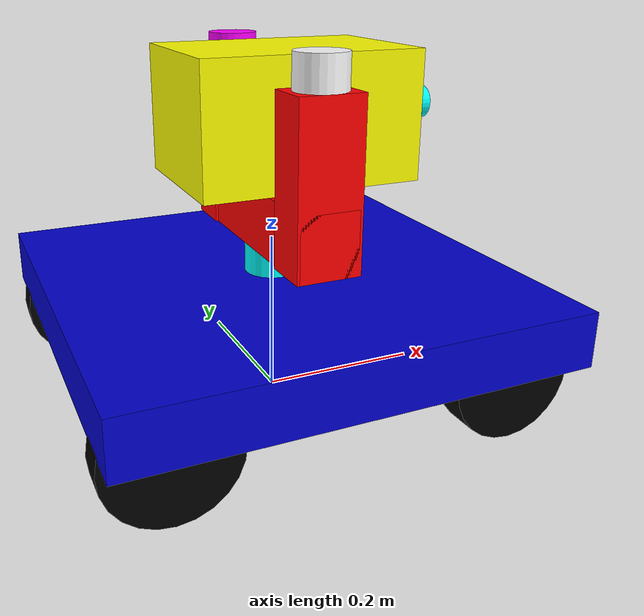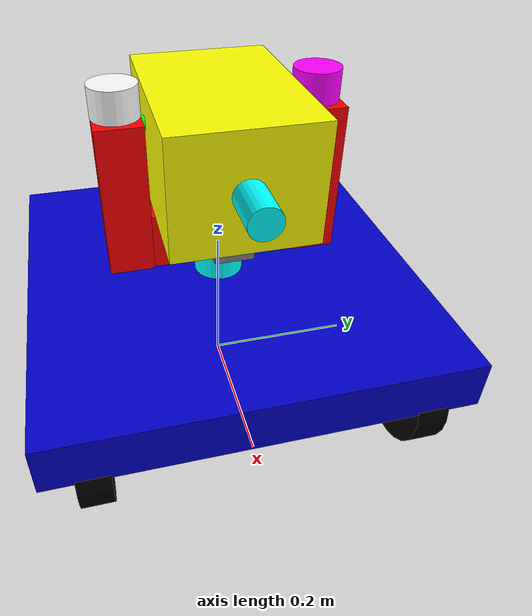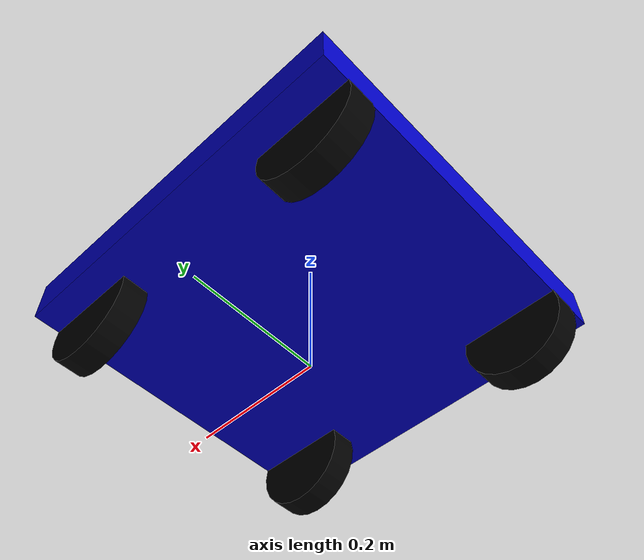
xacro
<?xml version="1.0"?>
<robot name="sentry_robot" xmlns:xacro="http://ros.org/wiki/xacro">

    <!-- Define robot constants (that we arent using)-->
  <xacro:property name="base_width" value="0.540"/>
  <xacro:property name="base_length" value="0.530"/> <!--in direction of turret-->
  <xacro:property name="base_height" value="0.066"/>
  <xacro:property name="ground_offset" value="0.093"/>

  <xacro:property name="wheel_radius" value="0.075"/>
  <xacro:property name="wheel_width" value="0.04"/>
  <xacro:property name="wheel_mass" value="0.5"/>

  <xacro:property name="wheel_turret_dir_offset" value="0.2048"/>
  <xacro:property name="wheel_anti_turret_dir_offset" value="0.1986"/>

  <xacro:property name="gimbal_radius" value="0.0335"/>
  <xacro:property name="gimbal_height" value="0.076"/>

  <xacro:property name="lidar_length" value="0.054"/>
  <xacro:property name="lidar_width" value="0.04629"/>
  <xacro:property name="lidar_height" value="0.0348"/>

  <xacro:property name="support_width" value="0.3048"/>
  <xacro:property name="support_length" value="0.0699"/>
  <xacro:property name="support_base_height" value="0.075"/>

  <xacro:property name="support_standoff_width" value="0.058"/>
  <xacro:property name="support_standoff_length" value="0.0762"/>
  <xacro:property name="support_standoff_height" value="0.197"/>

  <xacro:property name="turret_shaft_radius" value="0.01"/>

  <xacro:property name="turret_length" value="0.18"/>
  <xacro:property name="turret_width" value="0.262"/>
  <xacro:property name="turret_height" value="0.15"/>
  <xacro:property name="turret_height_offset" value="0.03"/>

  <xacro:property name="mass" value="20"/>

  <!-- Define inertial property macros  -->
  <xacro:macro name="box_inertia" params="m w h d">
  <inertial>
    <origin xyz="0 0 0" rpy="0 0 0"/>
    <mass value="${m}"/>
    <inertia
      ixx="${(m/12) * (h*h + d*d)}"
      ixy="0"
      ixz="0"
      iyy="${(m/12) * (w*w + d*d)}"
      iyz="0"
      izz="${(m/12) * (w*w + h*h)}"/>
  </inertial>
</xacro:macro>

  <xacro:macro name="cylinder_inertia" params="m rad h">
  <inertial>
    <origin xyz="0 0 0" rpy="0 0 0"/>
    <mass value="${m}"/>
    <inertia
      ixx="${(m/12) * (3*rad*rad + h*h)}"
      ixy="0"
      ixz="0"
      iyy="${(m/12) * (3*rad*rad + h*h)}"
      iyz="0"
      izz="${(m/2) * (rad*rad)}"/>
  </inertial>
</xacro:macro>

  <!-- Base Link = chassis. Footprint and odometry follow this frame. -->
  <link name="base_link">
    <visual>
      <origin xyz="0 0 ${base_height/2 + ground_offset}" rpy="0 0 0"/>
      <geometry>
        <box size="${base_width} ${base_length} ${base_height}"/>
      </geometry>
      <material name="blue">
        <color rgba="0 0 0.8 1"/>
      </material>
    </visual>
    <collision>
      <origin xyz="0 0 ${base_height/2 + ground_offset}" rpy="0 0 0"/>
      <geometry>
        <box size="${base_width} ${base_length} ${base_height}"/>
      </geometry>
    </collision>
    <xacro:box_inertia m="${mass}" w="${base_width}" d="${base_length}" h="${base_height}"/>
  </link>

  <!-- Front Left Wheel -->
  <link name="front_left_wheel">
    <visual>
      <geometry>
        <cylinder radius="${wheel_radius}" length="${wheel_width}"/>
      </geometry>
      <origin xyz="0 0 0" rpy="0 0 0"/>
      <material name="black">
        <color rgba="0 0 0 1"/>
      </material>
    </visual>
    <collision>
      <geometry>
        <cylinder radius="${wheel_radius}" length="${wheel_width}"/>
      </geometry>
      <origin xyz="0 0 0" rpy="0 0 0"/>
    </collision>
    <xacro:cylinder_inertia m="${wheel_mass}" rad="${wheel_radius}" h="${wheel_width}"/>
  </link>

  <joint name="front_left_wheel_joint" type="continuous">
    <parent link="base_link"/>
    <child link="front_left_wheel"/>
    <origin xyz="${wheel_anti_turret_dir_offset} ${wheel_turret_dir_offset} ${wheel_radius}" rpy="1.5708 0 0"/>
    <dynamics damping="0.1" friction="0.1"/>
    <axis xyz="0 0 1"/>
  </joint>

  <!-- Front Right Wheel -->
  <link name="front_right_wheel">
    <visual>
      <geometry>
        <cylinder radius="${wheel_radius}" length="${wheel_width}"/>
      </geometry>
      <origin xyz="0 0 0" rpy="0 0 0"/>
      <material name="black">
        <color rgba="0 0 0 1"/>
      </material>
    </visual>
    <collision>
      <geometry>
        <cylinder radius="${wheel_radius}" length="${wheel_width}"/>
      </geometry>
      <origin xyz="0 0 0" rpy="0 0 0"/>
    </collision>
    <xacro:cylinder_inertia m="${wheel_mass}" rad="${wheel_radius}" h="${wheel_width}"/>
  </link>

  <joint name="front_right_wheel_joint" type="continuous">
    <parent link="base_link"/>
    <child link="front_right_wheel"/>
    <origin xyz="${-wheel_anti_turret_dir_offset} ${wheel_turret_dir_offset} ${wheel_radius}" rpy="1.5708 0 0"/>
    <dynamics damping="0.1" friction="0.1"/>
    <axis xyz="0 0 1"/>
  </joint>

  <!-- Back Left Wheel -->
  <link name="back_left_wheel">
    <visual>
      <geometry>
        <cylinder radius="${wheel_radius}" length="${wheel_width}"/>
      </geometry>
      <origin xyz="0 0 0" rpy="0 0 0"/>
      <material name="black">
        <color rgba="0 0 0 1"/>
      </material>
    </visual>
    <collision>
      <geometry>
        <cylinder radius="${wheel_radius}" length="${wheel_width}"/>
      </geometry>
      <origin xyz="0 0 0" rpy="0 0 0"/>
    </collision>
    <xacro:cylinder_inertia m="${wheel_mass}" rad="${wheel_radius}" h="${wheel_width}"/>
  </link>

  <joint name="back_left_wheel_joint" type="continuous">
    <parent link="base_link"/>
    <child link="back_left_wheel"/>
    <origin xyz="${wheel_anti_turret_dir_offset} ${-wheel_turret_dir_offset} ${wheel_radius}" rpy="1.5708 0 0"/>
    <dynamics damping="0.1" friction="0.1"/>
    <axis xyz="0 0 1"/>
  </joint>

  <!-- Back Right Wheel -->
  <link name="back_right_wheel">
    <visual>
    <origin xyz="0 0 0" rpy="0 0 0"/>
      <geometry>
        <cylinder radius="${wheel_radius}" length="${wheel_width}"/>
      </geometry>
      <material name="black">
        <color rgba="0 0 0 1"/>
      </material>
    </visual>
    <collision>
    <origin xyz="0 0 0" rpy="0 0 0"/>
      <geometry>
        <cylinder radius="${wheel_radius}" length="${wheel_width}"/>
      </geometry>
    </collision>
    <xacro:cylinder_inertia m="${wheel_mass}" rad="${wheel_radius}" h="${wheel_width}"/>
  </link>

  <joint name="back_right_wheel_joint" type="continuous">
    <parent link="base_link"/>
    <child link="back_right_wheel"/>
    <origin xyz="${-wheel_anti_turret_dir_offset} ${-wheel_turret_dir_offset} ${wheel_radius}" rpy="1.5708 0 0"/>
    <dynamics damping="0.1" friction="0.1"/>
    <axis xyz="0 0 1"/>
  </joint>

   <link name="gimbal_link">
    <visual>
      <origin xyz="0 0 0" rpy="0 0 0"/>
      <geometry>
        <cylinder radius="${gimbal_radius}" length="${gimbal_height}"/>
      </geometry>
      <material name="Cyan">
        <color rgba="0 1.0 1.0 1.0"/>
      </material>
    </visual>
      <collision>
        <origin xyz="0 0 0" rpy="0 0 0"/>
        <geometry>
          <cylinder radius="${gimbal_radius}" length="${gimbal_height}"/>
        </geometry>
      </collision>
      <xacro:cylinder_inertia m="0.5" rad="${gimbal_radius}" h="${gimbal_height}"/>
  </link>
  <joint name="gimbal_joint" type="continuous">
      <parent link="base_link"/>
      <child link="gimbal_link"/>
      <origin xyz="0 0 ${base_height + ground_offset + gimbal_height/2}" rpy="0 0 ${1.5708}"/>
      <axis xyz="0 0 -1"/>
      <dynamics damping="0.1" friction="0.1"/>
  </joint>

   <!-- support_base -->
  <link name="bottom_support_link">
    <visual>
      <origin xyz="0 0 0" rpy="0 0 0"/>
      <geometry>
        <box size="${support_width} ${support_length} ${support_base_height}"/>
      </geometry>
      <material name="red">
        <color rgba="1 0 0 1"/>
      </material>
    </visual>
    <collision>
      <origin xyz="0 0 0" rpy="0 0 0"/>
      <geometry>
        <box size="${support_width} ${support_length} ${support_base_height}"/>
      </geometry>
    </collision>
    <xacro:box_inertia m="${0.5}" w="${support_width * 2 + 2 * gimbal_radius}" d="${support_length}" h="${support_base_height}"/>
  </link>

   <joint name="bottom_support_joint" type="fixed">
      <parent link="gimbal_link"/>
      <child link="bottom_support_link"/>
      <origin xyz="0 0 ${support_base_height / 2}" rpy="0 0 0"/>
  </joint>

  <!-- LSL -->
  <link name="right_support_link">
    <visual>
      <origin xyz="0 0 0" rpy="0 0 0"/>
      <geometry>
        <box size="${support_standoff_width} ${support_standoff_length} ${support_standoff_height}"/>
      </geometry>
      <material name="red">
        <color rgba="1 0 0 1"/>
      </material>
    </visual>
    <collision>
      <origin xyz="0 0 0" rpy="0 0 0"/>
      <geometry>
        <box size="${support_standoff_width} ${support_standoff_length} ${support_standoff_height}"/>
      </geometry>
    </collision>
    <xacro:box_inertia m="${0.5}" w="${support_standoff_width}" d="${support_standoff_length}" h="${support_standoff_height}"/>
  </link>

   <joint name="right_support_joint" type="fixed">
      <parent link="bottom_support_link"/>
      <child link="right_support_link"/>
      <origin xyz="${(support_width/2 - support_standoff_width/2)} 0 ${(support_standoff_height - support_base_height)/2}" rpy="0 0 0"/>
  </joint>

  <!-- RSL -->
  <link name="left_support_link">
    <visual>
      <origin xyz="0 0 0" rpy="0 0 0"/>
      <geometry>
        <box size="${support_standoff_width} ${support_standoff_length} ${support_standoff_height}"/>
      </geometry>
      <material name="red">
        <color rgba="1 0 0 1"/>
      </material>
    </visual>
    <collision>
      <origin xyz="0 0 0" rpy="0 0 0"/>
      <geometry>
        <box size="${support_standoff_width} ${support_standoff_length} ${support_standoff_height}"/>
      </geometry>
    </collision>
    <xacro:box_inertia m="${0.5}" w="${support_standoff_width}" d="${support_standoff_length}" h="${support_standoff_height}"/>
  </link>

   <joint name="left_support_joint" type="fixed">
      <parent link="bottom_support_link"/>
      <child link="left_support_link"/>
      <origin xyz="${-(support_width/2 - support_standoff_width/2)} 0 ${(support_standoff_height - support_base_height)/2}" rpy="0 0 0"/>
  </joint>

  <!-- Turret shaft -->
  <link name="turret_shaft_link">
    <visual>
    <origin xyz="0 0 0" rpy="0 0 0"/>
      <geometry>
        <cylinder radius="${turret_shaft_radius}" length="${2*(support_width/2 - support_standoff_width/2)}"/>
      </geometry>
      <material name="yellow">
        <color rgba="0 1 0 1"/>
      </material>
    </visual>
    <collision>
      <origin xyz="0 0 0" rpy="0 0 0"/>
      <geometry>
        <cylinder radius="${turret_shaft_radius}" length="${2*(support_width + gimbal_radius)}"/>
      </geometry>
    </collision>
    <xacro:cylinder_inertia m="${0.5}" rad="${turret_shaft_radius}" h="${2*(support_width + gimbal_radius)}"/>
  </link>

  <!-- Locked revolute for now: published in /joint_states, but held at 0 rad -->
  <joint name="turret_shaft_joint" type="revolute">
    <parent link="bottom_support_link"/>
    <child link="turret_shaft_link"/>
    <origin xyz="0 0 ${0.75 * support_standoff_height}" rpy="0 1.5708 0"/>
    <axis xyz="0 0 1"/>
    <limit lower="-0.0001" upper="0.0001" effort="100.0" velocity="0.01"/>
    <dynamics damping="500.0" friction="100.0"/>
  </joint>

  <!-- Turret box -->
  <link name="turret_link">
    <visual>
      <origin xyz="0 0 0" rpy="0 0 0"/>
      <geometry>
        <box size="${turret_width} ${turret_length} ${turret_height}"/>
      </geometry>
      <material name="green">
        <color rgba="1 1 0 1"/>
      </material>
    </visual>
    <collision>
      <origin xyz="0 0 0" rpy="0 0 0"/>
      <geometry>
        <box size="${turret_width} ${turret_length} ${turret_height}"/>
      </geometry>
    </collision>
    <xacro:box_inertia m="3" w="${turret_width}" d="${turret_length}" h="${turret_height}"/>
  </link>

   <joint name="turret_joint" type="fixed">
      <parent link="turret_shaft_link"/>
      <child link="turret_link"/>
      <origin xyz="${(turret_height_offset)} -0.014 0" rpy="1.5708 0 -1.5708"/>
  </joint>

  <!-- gun barrel shaft -->
  <link name="gun_shaft_link">
    <visual>
    <origin xyz="0 0 0" rpy="0 0 0"/>
      <geometry>
        <cylinder radius="0.02" length="0.15"/>
      </geometry>
      <material name="something">
        <color rgba="0 1 1 1"/>
      </material>
    </visual>
    <collision>
      <origin xyz="0 0 0" rpy="0 0 0"/>
      <geometry>
        <cylinder radius="0.02" length="0.15"/>
      </geometry>
    </collision>
    <xacro:cylinder_inertia m="0.2" rad="0.02" h="0.15"/>
  </link>

  <joint name="gun_shaft_joint" type="fixed">
    <parent link="turret_link"/>
    <child link="gun_shaft_link"/>
    <origin xyz="${turret_length/2 + 0.025} 0 0" rpy="0 1.5708 0"/>
    <axis xyz="0 0 1"/>
  </joint>

  <!-- LiDAR -->
  <link name="laser_frame_right">
    <visual>
      <geometry>
        <cylinder radius="0.03" length="0.04"/>
      </geometry>
      <material name="purple">
        <color rgba="1 0 1 1"/>
      </material>
    </visual>
    <collision>
      <geometry>
        <cylinder radius="0.03" length="0.04"/>
      </geometry>
    </collision>
    <inertial>
      <mass value="0.1"/>
      <origin xyz="0 0 0" rpy="0 0 0"/>
      <inertia ixx="0.0001" ixy="0.0" ixz="0.0"
               iyy="0.0001" iyz="0.0" izz="0.0001"/>
    </inertial>
  </link>

  <joint name="laser_joint_right" type="fixed">
    <parent link="right_support_link"/>
    <child link="laser_frame_right"/>
    <origin xyz="0 0 ${support_standoff_height / 2 + 0.02}" rpy="0 0 -1.5708"/>
  </joint>

  <link name="laser_frame_left">
    <visual>
      <geometry>
        <cylinder radius="0.03" length="0.04"/>
      </geometry>
      <material name="white">
        <color rgba="1 1 1 1"/>
      </material>
    </visual>
    <collision>
      <geometry>
        <cylinder radius="0.03" length="0.04"/>
      </geometry>
    </collision>
    <inertial>
      <mass value="0.1"/>
      <origin xyz="0 0 0" rpy="0 0 0"/>
      <inertia ixx="0.0001" ixy="0.0" ixz="0.0"
               iyy="0.0001" iyz="0.0" izz="0.0001"/>
    </inertial>
  </link>

  <joint name="laser_joint_left" type="fixed">
    <parent link="left_support_link"/>
    <child link="laser_frame_left"/>
    <origin xyz="0 0 ${support_standoff_height / 2 + 0.02}" rpy="0 0 1.5708"/>
  </joint>

  <!-- IMU -->
  <link name="imu_link">
    <visual>
      <geometry>
        <box size="0.02 0.02 0.01"/>
      </geometry>
      <material name="green">
        <color rgba="0 1 0 1"/>
      </material>
    </visual>
    <inertial>
      <mass value="0.01"/>
      <origin xyz="0 0 0" rpy="0 0 0"/>
      <inertia ixx="0.00001" ixy="0.0" ixz="0.0"
               iyy="0.00001" iyz="0.0" izz="0.00001"/>
    </inertial>
  </link>

  <joint name="imu_joint" type="fixed">
    <parent link="gimbal_link"/>
    <child link="imu_link"/>
    <origin xyz="0 0 0" rpy="0 0 0"/>
  </joint>

  <!-- depth camera-->
  <link name="depth_camera_link">
  <visual>
    <geometry>
      <box size="0.05 0.05 0.05"/>
    </geometry>
    <material name="camera_gray">
      <color rgba="0.5 0.5 0.5 1"/>
    </material>
  </visual>

  <collision>
    <geometry>
      <box size="0.05 0.05 0.05"/>
    </geometry>
  </collision>

  <inertial>
    <mass value="0.05"/>
    <inertia
      ixx="1e-5" ixy="0" ixz="0"
      iyy="1e-5" iyz="0"
      izz="1e-5"/>
  </inertial>
  </link>

  <joint name="depth_camera_joint" type="fixed">
  <parent link="turret_link"/>
  <child link="depth_camera_link"/>
  <origin xyz="0.05 0 ${-1 * (turret_height / 2  + 0.025)}" rpy="0 0 0"/>
  </joint>

    <!-- Gazebo-specific properties for base_link -->
    <gazebo reference="base_link">
    <mu1>0.2</mu1>
    <mu2>0.2</mu2>
    <kp>1000000.0</kp>
    <kd>100.0</kd>
    <minDepth>0.001</minDepth>
    <maxVel>1.0</maxVel>
    </gazebo>

    <!-- Gazebo-specific properties for wheels -->
    <gazebo reference="front_left_wheel">
        <mu1>1.0</mu1>
        <mu2>1.0</mu2>
        <kp>1000000.0</kp>
        <kd>1.0</kd>
        <minDepth>0.001</minDepth>
        <material>Gazebo/Black</material>
    </gazebo>

    <gazebo reference="front_right_wheel">
        <mu1>1.0</mu1>
        <mu2>1.0</mu2>
        <kp>1000000.0</kp>
        <kd>1.0</kd>
        <minDepth>0.001</minDepth>
        <material>Gazebo/Black</material>
    </gazebo>

    <gazebo reference="back_left_wheel">
        <mu1>1.0</mu1>
        <mu2>1.0</mu2>
        <kp>1000000.0</kp>
        <kd>1.0</kd>
        <minDepth>0.001</minDepth>
        <material>Gazebo/Black</material>
    </gazebo>

    <gazebo reference="back_right_wheel">
        <mu1>1.0</mu1>
        <mu2>1.0</mu2>
        <kp>1000000.0</kp>
        <kd>1.0</kd>
        <minDepth>0.001</minDepth>
        <material>Gazebo/Black</material>
    </gazebo>

<!-- Gazebo Planar Move Plugin (for omnidirectional motion) -->
  <gazebo>
    <plugin name="planar_move" filename="libgazebo_ros_planar_move.so">
      <ros>
        <remapping>cmd_vel:=cmd_vel</remapping>
        <remapping>odom:=odom</remapping>
      </ros>
      <update_rate>50</update_rate>
      <publish_rate>50</publish_rate>
      <publish_odom>true</publish_odom>
      <publish_odom_tf>true</publish_odom_tf>
      <odometry_frame>odom</odometry_frame>
      <robot_base_frame>base_link</robot_base_frame>
    </plugin>
  </gazebo>

  <!-- Joint State Publisher Plugin (publishes wheel joint states) -->
  <gazebo>
    <plugin name="gazebo_ros_joint_state_publisher" filename="libgazebo_ros_joint_state_publisher.so">
      <update_rate>50</update_rate>
      <joint_name>front_left_wheel_joint</joint_name>
      <joint_name>front_right_wheel_joint</joint_name>
      <joint_name>back_left_wheel_joint</joint_name>
      <joint_name>back_right_wheel_joint</joint_name>
      <joint_name>gimbal_joint</joint_name>
      <joint_name>turret_shaft_joint</joint_name>
    </plugin>
  </gazebo>

  <!-- LiDAR Plugin -->
  <gazebo reference="laser_frame_left">
    <sensor name="laser_left" type="ray">
      <pose>0 0 0 0 0 0</pose>
      <visualize>true</visualize>
      <update_rate>10</update_rate>
      <ray>
        <scan>
          <horizontal>
            <samples>241</samples>
            <resolution>1</resolution>
            <min_angle>1.5</min_angle>
            <max_angle>4.9</max_angle>
          </horizontal>
        </scan>
        <range>
          <min>0.25</min>
          <max>5</max>
          <resolution>0.01</resolution>
        </range>
      </ray>
      <plugin name="laser_controller_left" filename="libgazebo_ros_ray_sensor.so">
        <ros>
          <remapping>~/out:=/scan_left</remapping>
        </ros>
        <output_type>sensor_msgs/LaserScan</output_type>
        <frame_name>laser_frame_left</frame_name>
      </plugin>
    </sensor>
  </gazebo>

  <gazebo reference="laser_frame_right">
    <sensor name="laser_right" type="ray">
      <pose>0 0 0 0 0 0</pose>
      <visualize>true</visualize>
      <update_rate>10</update_rate>
      <ray>
        <scan>
          <horizontal>
            <samples>121</samples>
            <resolution>1</resolution>
            <min_angle>1.5</min_angle>
            <max_angle>4.9</max_angle>
          </horizontal>
        </scan>
        <range>
          <min>0.1</min>
          <max>10.0</max>
          <resolution>0.01</resolution>
        </range>
      </ray>
      <plugin name="laser_controller_right" filename="libgazebo_ros_ray_sensor.so">
        <ros>
          <remapping>~/out:=/scan_right</remapping>
        </ros>
        <output_type>sensor_msgs/LaserScan</output_type>
        <frame_name>laser_frame_right</frame_name>
      </plugin>
    </sensor>
  </gazebo>

  <!-- IMU Plugin -->
  <gazebo reference="imu_link">
    <gravity>true</gravity>
    <sensor name="imu_sensor" type="imu">
      <always_on>true</always_on>
      <update_rate>50</update_rate>
      <plugin filename="libgazebo_ros_imu_sensor.so" name="imu_plugin">
        <ros>
          <remapping>~/out:=imu</remapping>
        </ros>
        <initial_orientation_as_reference>false</initial_orientation_as_reference>
      </plugin>
    </sensor>
  </gazebo>

  <!-- Depth camera Plugin -->
  <gazebo reference="depth_camera_link">
  <sensor type="camera" name="depth_camera">
    <update_rate>30</update_rate>

    <camera>
      <horizontal_fov>1.047</horizontal_fov> <!-- 60 deg -->

      <image>
        <width>640</width>
        <height>480</height>
        <format>R8G8B8</format>
      </image>

      <clip>
        <near>0.1</near>
        <far>10.0</far>
      </clip>
    </camera>

    <plugin name="depth_camera_controller" filename="libgazebo_ros_camera.so">
      <ros>
        <namespace>/sentry</namespace>
      </ros>

      <frame_name>depth_camera_link</frame_name>

      <image_topic_name>image_raw</image_topic_name>
      <depth_image_topic_name>depth/image_raw</depth_image_topic_name>
      <camera_info_topic_name>camera_info</camera_info_topic_name>

      <point_cloud>true</point_cloud>
      <point_cloud_topic_name>points</point_cloud_topic_name>
    </plugin>
  </sensor>
</gazebo>

</robot>
